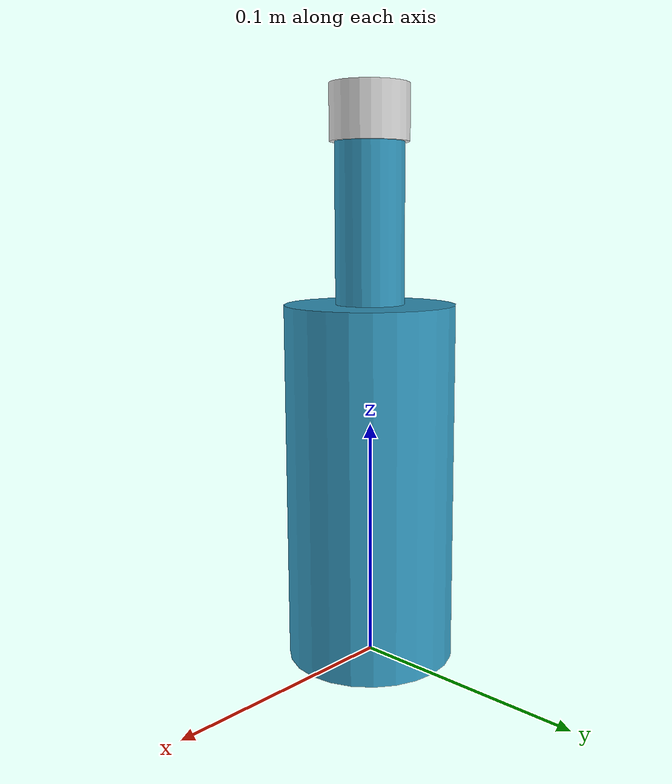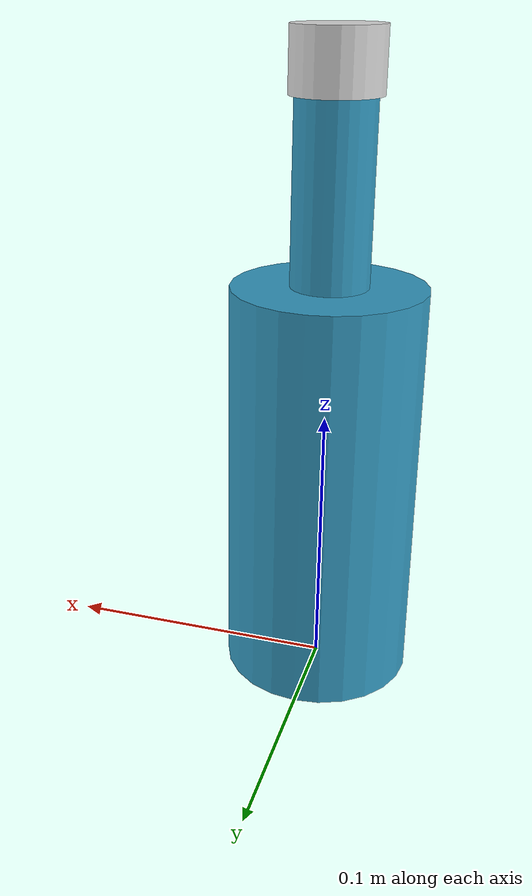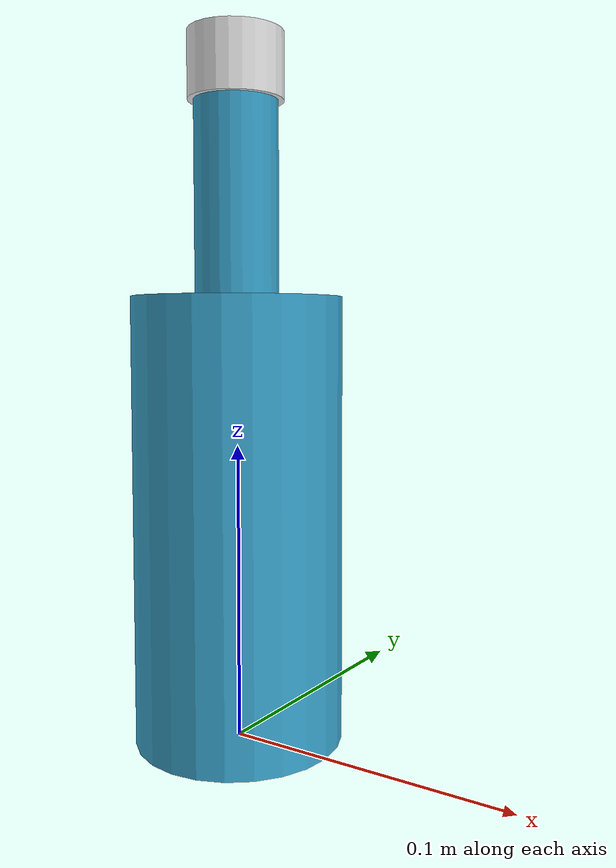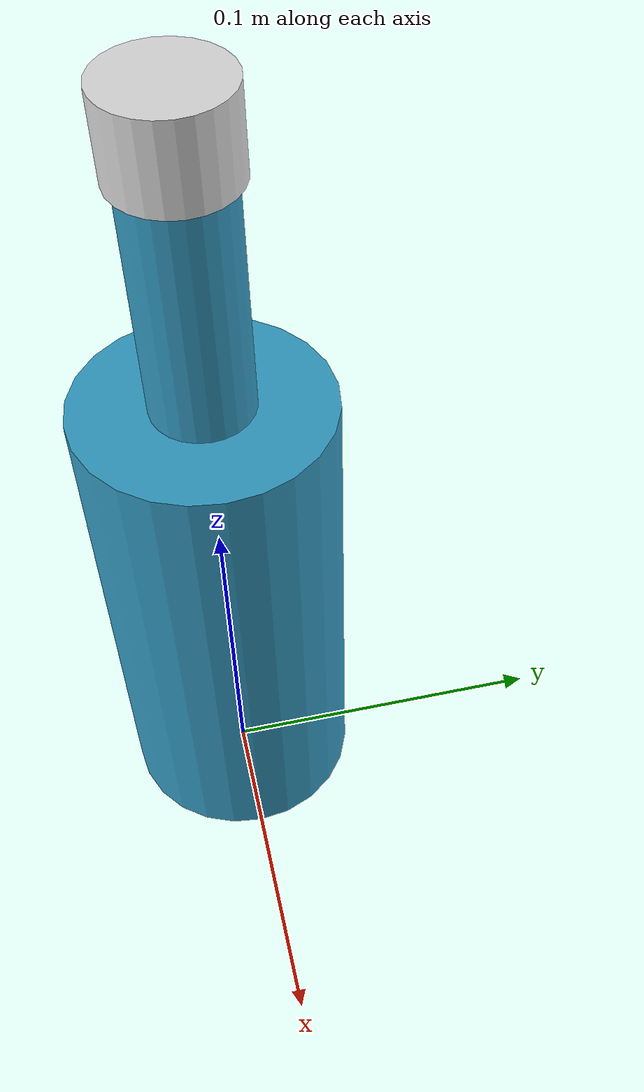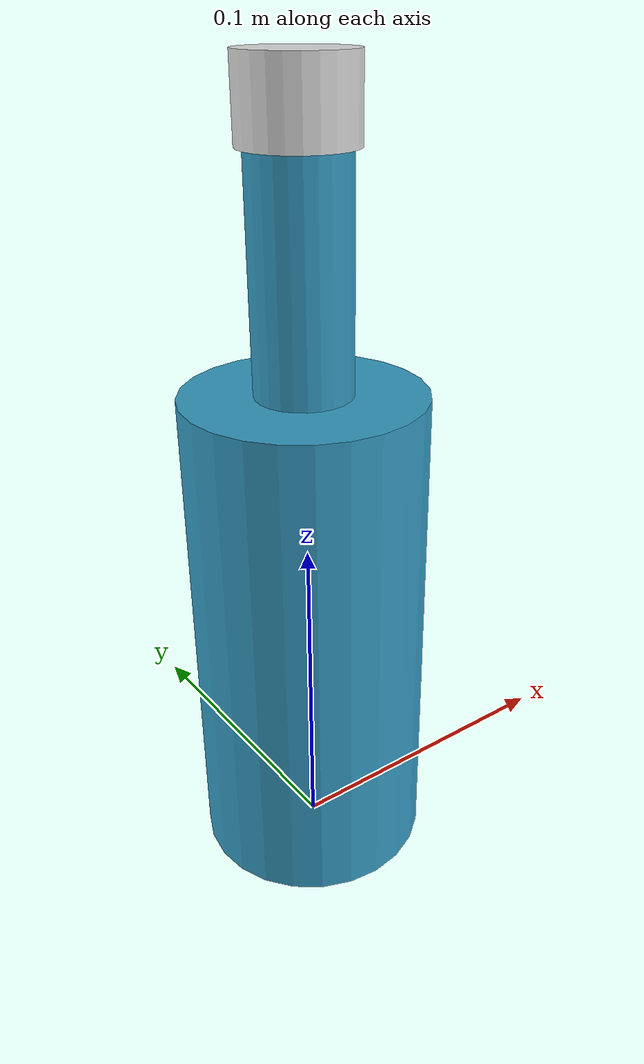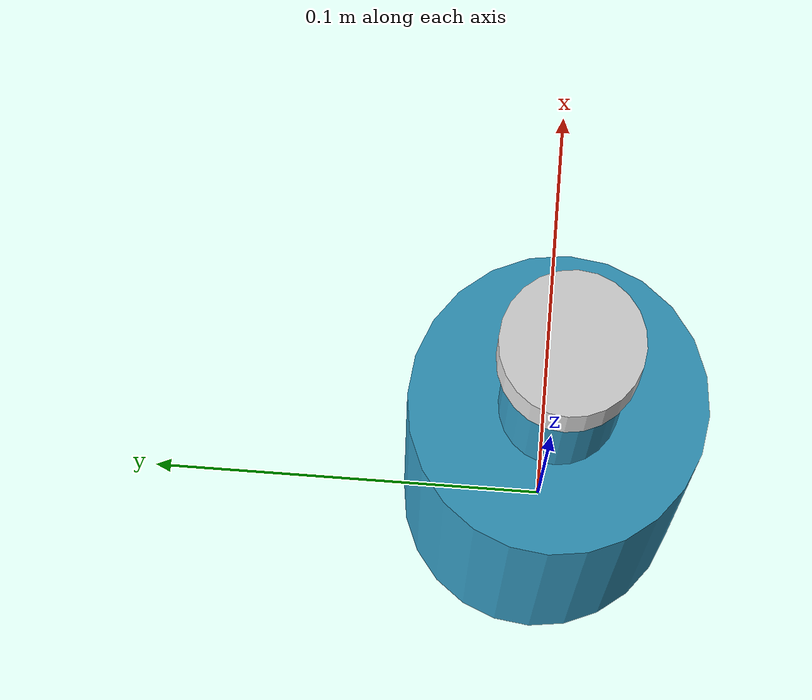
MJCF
<mujoco model="bottle">
  <!-- 0.5 l plastic bottle: body r 35 mm h 150 mm + shoulder + neck, 0.55 kg full.
       Top-heavy enough to tip if grasped badly. Origin at the bottom centre. Self-authored (CC0). -->
  <asset>
    <material name="mat" rgba="0.2 0.6 0.75 0.9"/>
    <material name="cap_mat" rgba="0.85 0.85 0.85 1"/>
  </asset>
  <worldbody>
    <body name="bottle">
      <freejoint/>
      <geom name="body" type="cylinder" size="0.035 0.075" pos="0 0 0.075" mass="0.48"
            material="mat" condim="4" friction="0.8 0.01 0.0002" solimp="0.95 0.99 0.001" solref="0.008 1"/>
      <geom name="neck" type="cylinder" size="0.014 0.032" pos="0 0 0.182" mass="0.05"
            material="mat" condim="4" friction="0.8 0.01 0.0002"/>
      <geom name="cap" type="cylinder" size="0.016 0.011" pos="0 0 0.225" mass="0.02"
            material="cap_mat" condim="4" friction="0.9 0.01 0.0002"/>
    </body>
  </worldbody>
</mujoco>
